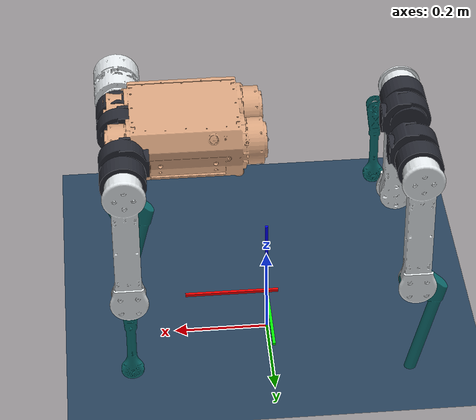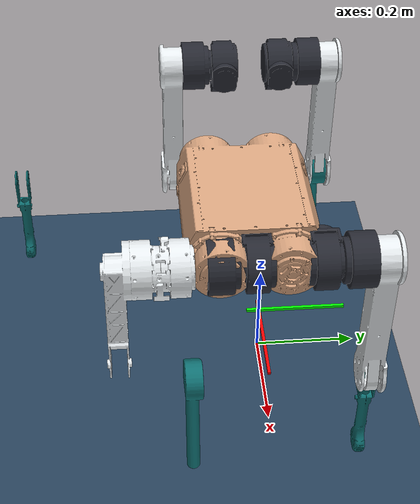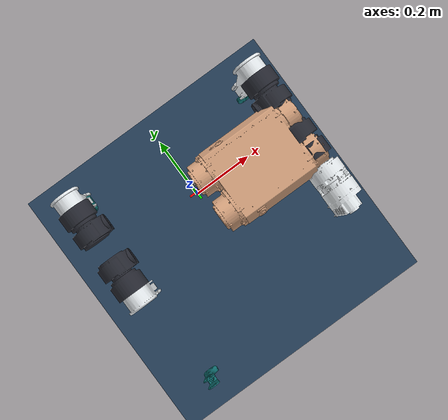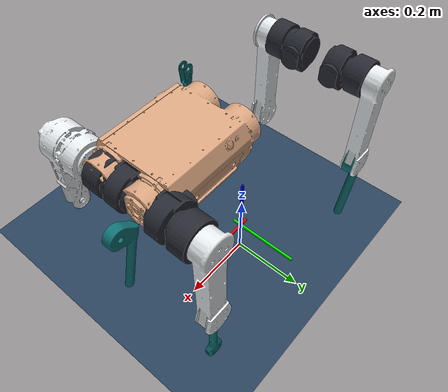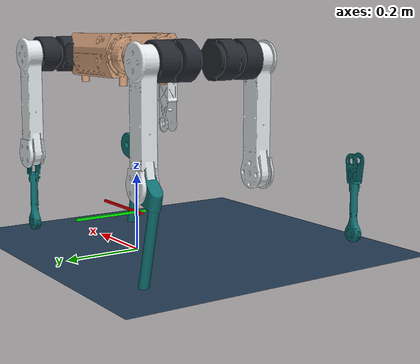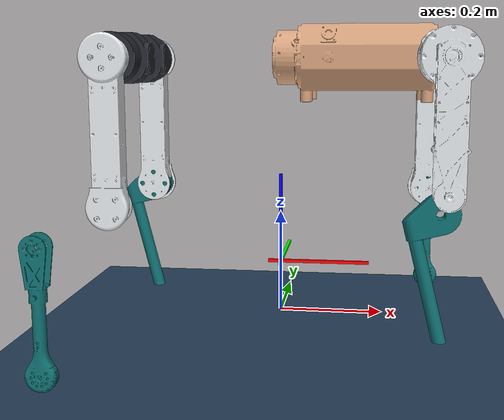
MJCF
<mujoco model="belt scene">
    <include file="belt_tor_act.xml"/>
    <statistic center="0 0 0.1" extent="0.8"/>
    <visual>
        <headlight diffuse="0.6 0.6 0.6" ambient="0.3 0.3 0.3" specular="0 0 0"/>
        <rgba haze="0.15 0.25 0.35 1"/>
        <global azimuth="-130" elevation="-20"/>
    </visual>
    <asset>
        <texture type="skybox" builtin="gradient" rgb1="0.3 0.5 0.7" rgb2="0 0 0" width="512" height="3072"/>
        <texture type="2d" name="groundplane" builtin="checker" mark="edge" rgb1="0.2 0.3 0.4" rgb2="0.1 0.2 0.3"
                 markrgb="0.8 0.8 0.8" width="300" height="300"/>
        <material name="groundplane" texture="groundplane" texuniform="true" texrepeat="5 5" reflectance="0.2"/>
    </asset>
    <worldbody>
        <light pos="0 0 1.5" dir="0 0 -1" directional="true"/>
        <geom name="floor" size="0 0 0.05" type="plane" material="groundplane"/>

        <body mocap="true" name="esti_indicator" pos="0.0 0.0 0.1">
            <site pos="0 0 0.075" size="0.003 0.003 0.1" type="box" name="mocap_left_site1" rgba="0 0 1 1"/>
            <site pos="0 0.075 0" size="0.003 0.1 0.003" type="box" name="mocap_left_site2" rgba="0 1 0 1"/>
            <site pos="0.075 0 0" size="0.1 0.003 0.003" type="box" name="mocap_left_site3" rgba="1 0 0 1"/>
        </body>

        <body mocap="true" name="start_pos" pos="0.0 0.0 0.1">
            <site pos="0 0 0.075" size="0.003 0.003 0.1" type="box" name="start_pos1" rgba="0 0 1 1"/>
            <site pos="0 0.075 0" size="0.003 0.1 0.003" type="box" name="start_pos2" rgba="0 1 0 1"/>
            <site pos="0.075 0 0" size="0.1 0.003 0.003" type="box" name="start_pos3" rgba="1 0 0 1"/>
        </body>
    </worldbody>
</mujoco>

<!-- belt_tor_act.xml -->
<!--Please note the -->
<mujoco model="belt">
    <compiler angle="radian" meshdir="assets" autolimits="true" eulerseq="ZYX"/>
    <option cone="elliptic" impratio="100" integrator="implicitfast" timestep="0.002" />
    <!--    mujoco default properties-->
    <default>
        <default class="belt">
            <geom friction="0.6" margin="0.00001" condim="1"/>
            <!--            armature: inertia of rotors; joint global axis 0.0000097913844*gr^2-->
            <joint axis="0 1 0" damping="0.01" armature="0.01" frictionloss="0.01" actuatorfrcrange="-100 100"/>
            <default class="abad">
                <!--                joint range-->
                <joint pos="0 0 0" axis="1 0 0" range="-1.0472 1.0472"/>
                <!--                control position -->
                <motor ctrlrange="-45 45"/>
            </default>
            <default class="hip_right">
                <joint range="-3.1415926 3.1415926"/>
                <motor ctrlrange="-45 45"/>
            </default>
            <default class="hip_left">
                <joint range="-3.1415926 3.1415926"/>
                <motor ctrlrange="-45 45"/>
            </default>
            <default class="knee_right">
                <joint range="-2.890247 0"/>
                <!--                output torque range, knees with larger gear ratio-->
                <motor forcerange="-80 80" ctrlrange="-80 80"/>
            </default>
            <default class="knee_left">
                <joint range="-2.890247 0"/>
                <!--                output torque range, knees with larger gear ratio-->
                <motor forcerange="-80 80" ctrlrange="-80 80"/>
            </default>
            <!--            visual mesh for sensors and markers-->
            <default class="visual">
                <geom type="mesh" contype="0" conaffinity="0" group="2"/>
            </default>
            <!--            build collision model-->
            <default class="collision">
                <geom group="3" type="capsule"/>
                <default class="foot">
                    <geom type="sphere" size="0.0224" priority="1" solimp="0.015 1 0.031" condim="6" friction="0.5 0.02 0.01"
                          pos="0 0 -0.257515"/>
                </default>
                <!--                body is based on local frame-->
                <default class="hip_front_left1">
                    <geom size="0.053 0.028" pos="0.0555 0 0" quat="1 1 0 0" type="cylinder"/>
                </default>
                <default class="hip_front_left2">
                    <geom size="0.047 0.0264" pos="0.0555 0.05455 0" quat="1 1 0 0" type="cylinder"/>
                </default>
                <default class="hip_front_left3">
                    <geom size="0.044 0.022" pos="0.0555 0.10045 0" quat="1 1 0 0 " type="cylinder"/>
                </default>
                <default class="hip_front_right1">
                    <geom size="0.053 0.028" pos="0.0555 0 0" quat="1 1 0 0" type="cylinder"/>
                </default>
                <default class="hip_front_right2">
                    <geom size="0.047 0.0264" pos="0.0555 -0.05455 0 " quat="1 1 0 0" type="cylinder"/>
                </default>
                <default class="hip_front_right3">
                    <geom size="0.044 0.022" pos="0.0555 -0.10045 0" quat="1 1 0 0" type="cylinder"/>
                </default>
                <default class="hip_rear_left1">
                    <geom size="0.053 0.028" pos="-0.0555 0 0" quat="1 1 0 0" type="cylinder"/>
                </default>
                <default class="hip_rear_left2">
                    <geom size="0.047 0.0264" pos="-0.0555 0.05455 0" quat="1 1 0 0" type="cylinder"/>
                </default>
                <default class="hip_rear_left3">
                    <geom size="0.044 0.022" pos="-0.0555 0.10045 0" quat="1 1 0 0 " type="cylinder"/>
                </default>
                <default class="hip_rear_right1">
                    <geom size="0.053 0.028" pos="-0.0555 0 0" quat="1 1 0 0" type="cylinder"/>
                </default>
                <default class="hip_rear_right2">
                    <geom size="0.047 0.0264" pos="-0.0555 -0.05455 0 " quat="1 1 0 0" type="cylinder"/>
                </default>
                <default class="hip_rear_right3">
                    <geom size="0.044 0.022" pos="-0.0555 -0.10045 0" quat="1 1 0 0" type="cylinder"/>
                </default>

                <default class="thigh_1">
                    <geom type="box" size="0.028 0.0195 0.13475" pos="0 0 -0.13475" quat="1 0 0 0"/>
                </default>
                <default class="thigh_2">
                    <geom type="cylinder" size="0.04 0.022" pos="0 0 -0.2695" quat="1 1 0 0"/>
                </default>
                <default class="calf_1">
                    <geom size="0.0125" fromto="0 0 0 -0.05046 0 -0.01258"/>
                </default>
                <default class="calf_2">
                    <geom size="0.0125" fromto="-0.05046 0 -0.01258 0 0 -0.257515"/>
                </default>
            </default>
        </default>
    </default>

    <asset>
        <material name="dark" rgba="0.1 0.1 0.1 1"/>
        <mesh class="belt" file="base_link.STL"/>
        <mesh class="belt" file="fl_abad_link.STL"/>
        <mesh class="belt" file="fl_hip_link.STL"/>
        <mesh class="belt" file="fl_knee_link.STL"/>
        <mesh class="belt" file="fr_abad_link.STL"/>
        <mesh class="belt" file="fr_hip_link.STL"/>
        <mesh class="belt" file="fr_knee_link.STL"/>
        <mesh class="belt" file="rl_abad_link.STL"/>
        <mesh class="belt" file="rl_hip_link.STL"/>
        <mesh class="belt" file="rl_knee_link.STL"/>
        <mesh class="belt" file="rr_abad_link.STL"/>
        <mesh class="belt" file="rr_hip_link.STL"/>
        <mesh class="belt" file="rr_knee_link.STL"/>
    </asset>

    <worldbody>
        <light name="spotlight" mode="targetbodycom" target="base" pos="0 -1 2"/>
        <body name="base" pos="0 0 0.5" childclass="belt">
            <camera name="tracking" mode="trackcom" pos="0 -1 0.8" xyaxes="1 0 0 0 1 1"/>
            <!--            type of the site is sphere by default-->
            <site name="head" pos="0.3 0 0" rgba="1 0 0 1" size="0.02" group="0"/>
            <inertial pos="0.00 0.000 -0.00069" quat="1 0 0 0" mass="13.32985"
                      diaginertia="0.04311 0.19241 0.21611"/>
            <freejoint/>
            <geom class="visual" mesh="base_link" rgba="0.847058824 0.643137255 0.498039216 1"/>
            <!--            main box-->
            <geom class="collision" type="box" size="0.194 0.0808 0.056"/>
            <!--            build four abad motors-->
            <geom class="collision" type="cylinder" pos="0 0.055 0" quat="1 0 1 0" size="0.04695 0.2322"/>
            <geom class="collision" type="cylinder" pos="0 -0.055 0" quat="1 0 1 0" size="0.04695 0.2322"/>
            <site name="imu" pos="0 0 0"/>
            <body name="fr_abad" pos="0.241 -0.055 0" quat="1 0 0 0">
                <inertial pos="0.052428 -0.025819 7.2618e-08" quat="0.453148 0.54283 -0.453135 0.542827" mass="1.9747" diaginertia="0.0032013 0.00310579 0.00221631"/>
                <joint class="abad" name="fr_abad_joint"/>
                <geom class="visual" mesh="fr_abad_link" quat="1 0 0 0" rgba="0.152941176 0.160784314 0.196078431 1"/>
                <geom class="hip_front_right1"/>
                <geom class="hip_front_right2"/>
                <geom class="hip_front_right3"/>
                <body name="fr_hip" pos="0.0554994 -0.10045 0" quat="1 0 0 0">
                    <inertial pos="-4.7268e-06 -0.0035029 -0.11665" quat="0.707131 0.00128766 -0.0013139 0.70708" mass="1.0489" diaginertia="0.0125462 0.012351 0.000606138"/>
                    <joint class="hip_right" name="fr_hip_joint"/>
                    <geom class="visual" mesh="fr_hip_link" rgba="0.905882353 0.925490196 0.937254902 1"/>
                    <geom class="thigh_1"/>
                    <geom class="thigh_2"/>
                    <body name="fr_knee" pos="0 0 -0.2695">
                        <inertial pos="-0.0112576 -3.13499e-08 -0.0631957" quat="0.70698 -0.0132108 -0.0132119 0.706987" mass="0.391062" diaginertia="0.00383396 0.00366268 0.000225956"/>
                        <joint class="knee_right" name="fr_knee_joint"/>
                        <geom class="visual" mesh="fr_knee_link" rgba="0.058823529 0.443137255 0.450980392 1"/>
                        <geom class="calf_1"/>
                        <geom class="calf_2"/>
                        <geom name="fr_foot" class="foot"/>
                        <site name="fr_foot_site" rgba="0.941176471 0.364705882 0.368627451 1" pos="0 0 -0.257515" type="sphere" size="0.0224" group="0"/>
                    </body>
                </body>
            </body>
            <body name="fl_abad" pos="0.241 0.055 0" quat="1 0 0 0">
                <inertial pos="0.052428 0.025819 -7.2618e-08" quat="0.542827 0.453135 -0.54283 0.453148" mass="1.9747" diaginertia="0.0032013 0.00310579 0.00221631"/>
                <joint class="abad" name="fl_abad_joint"/>
                <geom class="visual" mesh="fl_abad_link" quat="1 0 0 0" rgba="0.152941176 0.160784314 0.196078431 1"/>
                <geom class="hip_front_left1"/>
                <geom class="hip_front_left2"/>
                <geom class="hip_front_left3"/>
                <body name="fl_hip" pos="0.055499 0.10045 0" quat="1 0 0 0">
                    <inertial pos="4.7257e-06 0.0035029 -0.11665" quat="0.707131 -0.00128767 0.0013139 0.70708" mass="1.0489" diaginertia="0.0125462 0.012351 0.000606138"/>
                    <joint class="hip_left" name="fl_hip_joint"/>
                    <geom class="visual" mesh="fl_hip_link" rgba="0.905882353 0.925490196 0.937254902 1"/>
                    <geom class="thigh_1"/>
                    <geom class="thigh_2"/>
                    <body name="fl_knee" pos="0 0 -0.2695">
                        <inertial pos="-0.011258 -3.135e-08 -0.063196" quat="0.70698 -0.0132108 -0.0132119 0.706987" mass="0.39106" diaginertia="0.003834 0.0036627 0.000225953"/>
                        <joint class="knee_left" name="fl_knee_joint"/>
                        <geom class="visual" mesh="fl_knee_link" rgba="0.058823529 0.443137255 0.450980392 1"/>
                        <geom class="calf_1"/>
                        <geom class="calf_2"/>
                        <geom name="fl_foot" class="foot"/>
                        <site name="fl_foot_site" rgba="0.941176471 0.364705882 0.368627451 1" pos="0 0 -0.257515 " type="sphere" size="0.0224" group="0"/>
                    </body>
                </body>
            </body>

            <body name="rr_abad" pos="-0.241 -0.055 0" quat="1 0 0 0">
                <inertial pos="-0.052428 -0.025819 -7.2618e-08" quat="0.54283 0.453148 -0.542827 0.453135" mass="1.9747" diaginertia="0.0032013 0.00310579 0.00221631"/>
                <joint class="abad" name="rr_abad_joint"/>
                <geom class="visual" mesh="rr_abad_link" quat="1 0 0 0" rgba="0.152941176 0.160784314 0.196078431 1"/>
                <geom class="hip_rear_right1"/>
                <geom class="hip_rear_right2"/>
                <geom class="hip_rear_right3"/>
                <body name="rr_hip" pos="-0.055499 -0.10045 0">
                    <inertial pos="-4.72682e-06 -0.0035029 -0.116651" quat="0.707131 0.00128766 -0.0013139 0.70708" mass="1.0489" diaginertia="0.0125463 0.0123505 0.000606143"/>
                    <joint class="hip_right" name="rr_hip_joint"/>
                    <geom class="visual" mesh="rr_hip_link" rgba="0.905882353 0.925490196 0.937254902 1"/>
                    <geom class="thigh_1"/>
                    <geom class="thigh_2"/>
                    <body name="rr_knee" pos="0 0 -0.2695">
                        <inertial pos="-0.011258 -3.135e-08 -0.063196" quat="0.70698 -0.0132108 -0.0132119 0.706987" mass="0.39106" diaginertia="0.003834 0.0036627 0.000225953"/>
                        <joint class="knee_right" name="rr_knee_joint"/>
                        <geom class="visual" mesh="rr_knee_link" rgba="0.058823529 0.443137255 0.450980392 1"/>
                        <geom class="calf_1"/>
                        <geom class="calf_2"/>
                        <geom name="rr_foot" class="foot"/>
                        <site name="rr_foot_site" rgba="0.941176471 0.364705882 0.368627451 1" pos="0 0 -0.257515" type="sphere" size="0.0224" group="0"/>
                    </body>
                </body>
            </body>

            <body name="rl_abad" pos="-0.241 0.055 0" quat="1 0 0 0">
                <inertial pos="-0.052428 0.025819 7.2618e-08" quat="0.453135 0.542827 -0.453148 0.54283" mass="1.9747" diaginertia="0.0032013 0.00310579 0.00221631"/>
                <joint class="abad" name="rl_abad_joint"/>
                <geom class="visual" mesh="rl_abad_link" quat="1 0 0 0" rgba="0.152941176 0.160784314 0.196078431 1"/>
                <geom class="hip_rear_left1"/>
                <geom class="hip_rear_left2"/>
                <geom class="hip_rear_left3"/>
                <body name="rl_hip" pos="-0.055499 0.10045 0" quat="1 0 0 0">
                    <inertial pos="4.7257e-06 0.0035029 -0.11665" quat="0.707131 -0.00128767 0.0013139 0.70708" mass="1.0489" diaginertia="0.0125462 0.012351 0.000606138"/>
                    <joint class="hip_left" name="rl_hip_joint"/>
                    <geom class="visual" mesh="rl_hip_link" rgba="0.905882353 0.925490196 0.937254902 1"/>
                    <geom class="thigh_1"/>
                    <geom class="thigh_2"/>
                    <body name="rl_knee" pos="0 0 -0.2695 ">
                        <inertial pos="-0.011258 -3.135e-08 -0.063196" quat="0.70698 -0.0132108 -0.0132119 0.706987" mass="0.39106" diaginertia="0.003834 0.0036627 0.000225953"/>
                        <joint class="knee_left" name="rl_knee_joint"/>
                        <geom class="visual" mesh="rl_knee_link" rgba="0.058823529 0.443137255 0.450980392 1"/>
                        <geom class="calf_1"/>
                        <geom class="calf_2"/>
                        <geom name="rl_foot" class="foot"/>
                        <site name="rl_foot_site" rgba="0.941176471 0.364705882 0.368627451 1" pos="0 0 -0.257515" type="sphere" size="0.0224" group="0"/>
                    </body>
                </body>
            </body>
        </body>
    </worldbody>

    <actuator>
        <motor class="abad" name="FR_ABAD" joint="fr_abad_joint"/>
        <motor class="hip_right" name="FR_HIP" joint="fr_hip_joint"/>
        <motor class="knee_right" name="FR_KNEE" joint="fr_knee_joint"/>
        <motor class="abad" name="FL_ABAD" joint="fl_abad_joint"/>
        <motor class="hip_left" name="FL_HIP" joint="fl_hip_joint"/>
        <motor class="knee_left" name="FL_KNEE" joint="fl_knee_joint"/>
        <motor class="abad" name="RR_ABAD" joint="rr_abad_joint"/>
        <motor class="hip_right" name="RR_HIP" joint="rr_hip_joint"/>
        <motor class="knee_right" name="RR_KNEE" joint="rr_knee_joint"/>
        <motor class="abad" name="RL_ABAD" joint="rl_abad_joint"/>
        <motor class="hip_left" name="RL_HIP" joint="rl_hip_joint"/>
        <motor class="knee_left" name="RL_KNEE" joint="rl_knee_joint"/>
    </actuator>
    <sensor>
        <gyro name="body_gyro" site="imu"/>
        <framequat name="body_quat" objtype="site" objname="imu" />
        <accelerometer name="body_acc" site="imu"/>
    </sensor>

    <keyframe>
        <key name="home" qpos="0 0 0.41 1 0 0 0 0 0.7086 -1.4172 0 0.7086 -1.4172 0 0.7086 -1.4172 0 0.7086 -1.4172"/>
    </keyframe>
</mujoco>
